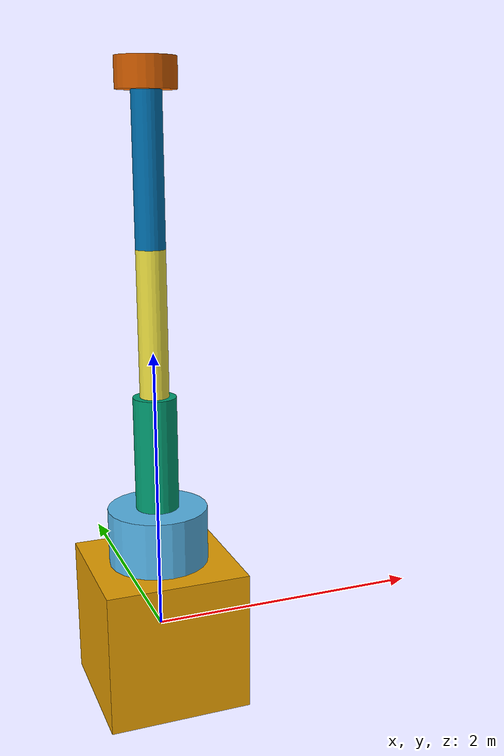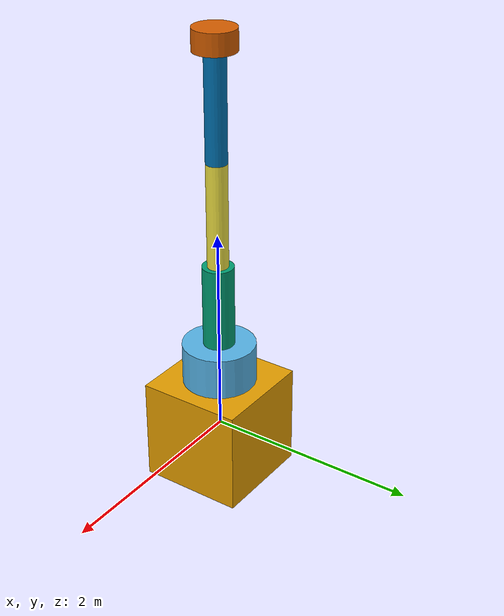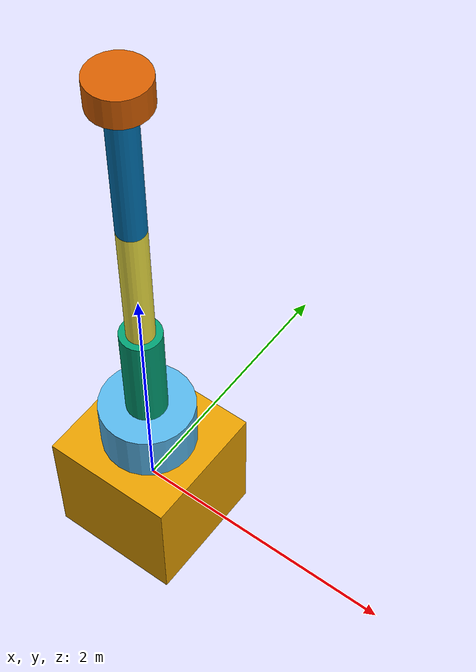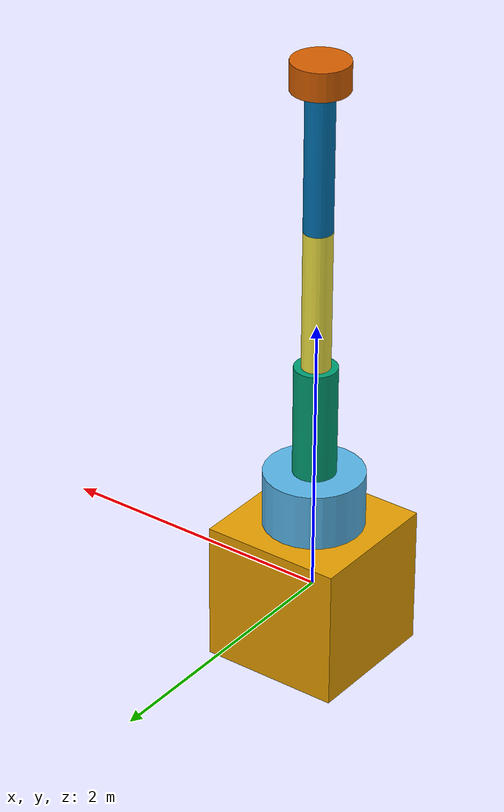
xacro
<?xml version='1.0' ?>

<robot name="arm" xmlns:xacro="http://www.ros.org/wiki/xacro">
	<link name = "base_link">
		<visual>
			<origin rpy = "0 0 0" xyz = "0 0 0" /> 			<!-- origin of the base link is at 0,0,0-->
			<geometry>
				<box size = "1 1 1" />
			</geometry>
		</visual>
	</link>

	<joint name = "base_link_link_1" type ="revolute">
		<axis xyz = "0 0 1"/>
		<limit effort="1000.0" lower="-3.14" upper = "3.14" velocity = "0.5"/>
		<origin rpy = "0 0 0" xyz = " 0 0 0.5"/>
		<parent link = "base_link"/>
		<child link = "link_1"/>
	</joint>

	<link name = "link_1">
		<visual>
			<origin rpy = "0 0 0" xyz = "0 0 0.2" />		<!-- origin of the link_1 is at 0,0,0.2-->
			<geometry>
				<cylinder radius = "0.35" length = "0.4" />
			</geometry>
		</visual>
	</link>

	<joint name = "link_1_link_2" type ="revolute">
		<axis xyz = "0 1 0"/>
		<limit effort="1000.0" lower="-3.14" upper = "3.14" velocity = "0.5"/>
		<origin rpy = "0 0 0" xyz = " 0 0 0.4"/>      		<!-- Distance from prev joint where the next joint will happen -->
		<parent link = "link_1"/>
		<child link = "link_2"/>
	</joint>

	<link name = "link_2">
		<visual>
			<origin rpy = "0 0 0" xyz = "0 0 0.4" />
			<geometry>
				<cylinder radius = "0.15" length = "0.8" />
			</geometry>
		</visual>
	</link>

	<joint name = "link_2_link_3" type ="revolute">
		<axis xyz = "0 1 0"/>
		<limit effort="1000.0" lower="-3.14" upper = "3.14" velocity = "0.5"/>
		<origin rpy = "0 0 0" xyz = " 0 0 0.8"/> <!-- Distance from prev joint where the next joint will happen -->
		<parent link = "link_2"/>
		<child link = "link_3"/>
	</joint>

	<link name = "link_3">
		<visual>
			<origin rpy = "0 0 0" xyz = "0 0 0.5" />
			<geometry>
				<cylinder radius = "0.10" length = "1" />
			</geometry>
		</visual>
	</link>

	<joint name = "link_3_link_4" type ="revolute">
		<axis xyz = "0 1 0"/>
		<limit effort="1000.0" lower="-3.14" upper = "3.14" velocity = "0.5"/>
		<origin rpy = "0 0 0" xyz = " 0 0 1"/> <!-- Distance from prev joint where the next joint will happen -->
		<parent link = "link_3"/>
		<child link = "link_4"/>
	</joint>

	<link name = "link_4">
		<visual>
			<origin rpy = "0 0 0" xyz = "0 0 0.5" />
			<geometry>
				<cylinder radius = "0.10" length = "1" />
			</geometry>
		</visual>
	</link>

	<joint name = "link_4_link_5" type ="revolute">
		<axis xyz = "0 0 1"/>
		<limit effort="1000.0" lower="-3.14" upper = "3.14" velocity = "0.5"/>
		<origin rpy = "0 0 0" xyz = " 0 0 1"/> <!-- Distance from prev joint where the next joint will happen -->
		<parent link = "link_4"/>
		<child link = "link_5"/>
	</joint>

	<link name = "link_5">
		<visual>
			<origin rpy = "0 0 0" xyz = "0 0 0.1" />
			<geometry>
				<cylinder radius = "0.2" length = "0.2" />
			</geometry>
		</visual>
	</link>

</robot>
